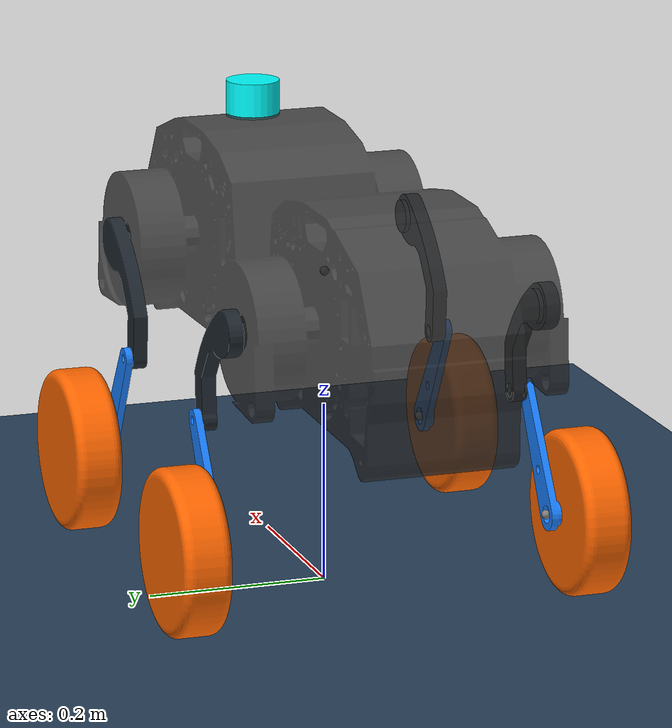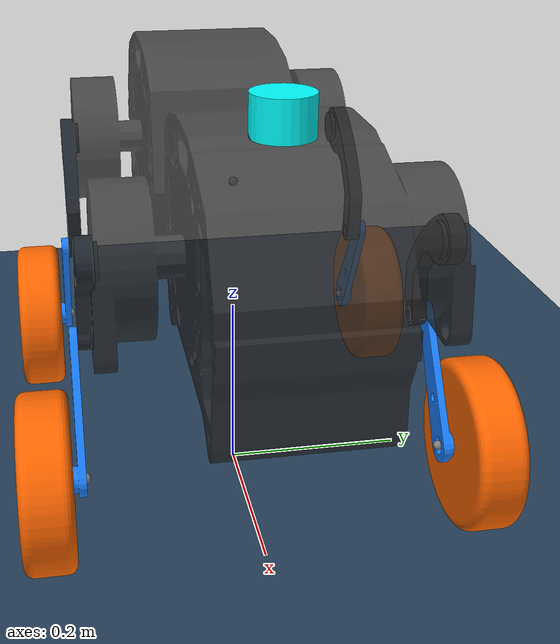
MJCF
<mujoco model="xingtian scene">
  <include file="xingtian_sym_model.xml"/>

  <statistic center="0 0 0.1" extent="0.8"/>

  <visual>
    <headlight diffuse="0.6 0.6 0.6" ambient="0.3 0.3 0.3" specular="0 0 0"/>
    <rgba haze="0.15 0.25 0.35 1"/>
    <global azimuth="-130" elevation="-20"/>
  </visual>

  <asset>
    <texture type="skybox" builtin="gradient" rgb1="0.3 0.5 0.7" rgb2="0 0 0" width="512" height="3072"/>
    <texture type="2d" name="groundplane" builtin="checker" mark="edge" rgb1="0.2 0.3 0.4" rgb2="0.1 0.2 0.3"
      markrgb="0.8 0.8 0.8" width="300" height="300"/>
    <material name="groundplane" texture="groundplane" texuniform="true" texrepeat="5 5" reflectance="0.2"/>
  </asset>

  <worldbody>
    <light pos="0 0 1.5" dir="0 0 -1" directional="true"/>
    <geom name="floor" size="0 0 0.05" type="plane" material="groundplane"/>

  </worldbody>
</mujoco>

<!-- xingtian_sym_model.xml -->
<mujoco model="xingtian_sym_model">
  <compiler angle="radian" meshdir="../meshes/" autolimits="true"/>
  <option cone="elliptic" impratio="100" />           <!-- 摩擦方向，椭圆型摩擦力 -->

  <default>
    <default class="xingtian_sym_model">
      <geom type="mesh" />
      <joint damping="0.5" armature="0.01" />                       <!--group  0 默认可见  1  隐藏  2视觉 3 碰撞 4传感器的锚点-->
      <default class="visual">
        <geom contype="0" conaffinity="0" group="2" />
      </default>
      <default class="collision">
        <geom group="3" mass="0" density="0" />
      </default>
      <site size="0.001" rgba="0.5 0.5 0.5 0.3" group="4" />
    </default>
  </default>

  <asset>
    <material name="metal" rgba=".9 .95 .95 1" />
    <material name="black" rgba="0 0 0 1" />
    <material name="white" rgba="1 1 1 1" />
    <material name="gray" rgba="0.671705 0.692426 0.774270 1" />
    <mesh name="base_link" file="base_link.STL"/>
    <mesh name="imu_link" file="imu_link.STL"/>
    <mesh name="LF_hip" file="LF_hip.STL"/>
    <mesh name="LF_knee" file="LF_knee.STL"/>
    <mesh name="LF_wheel" file="LF_wheel.STL"/>
    <mesh name="LR_hip" file="LR_hip.STL"/>
    <mesh name="LR_knee" file="LR_knee.STL"/>
    <mesh name="LR_wheel" file="LR_wheel.STL"/>
    <mesh name="RR_hip" file="RR_hip.STL"/>
    <mesh name="RR_knee" file="RR_knee.STL"/>
    <mesh name="RR_wheel" file="RR_wheel.STL"/>
    <mesh name="RF_hip" file="RF_hip.STL"/>
    <mesh name="RF_knee" file="RF_knee.STL"/>
    <mesh name="RF_wheel" file="RF_wheel.STL"/>
  </asset>

<!-- contype是指的 是否碰撞 -->
  <worldbody>
    <body name="base_link" pos="0 0 0.35">   <!--初始位置-->
      <inertial pos="-3.2632E-06 2.8538E-07 -0.00055079" quat="1 0 0 0" mass="26.135" diaginertia="0.13317 0.96411 0.91536"/>
      <joint name="float_joint" type ="free"/>
      <geom pos="0 0 0" type="mesh" contype="0" conaffinity="0" group="1" density="0" rgba="0.2 0.2 0.2 0.8" mesh="base_link"/>
      <geom size="0.4 0.08 0.12" type="box" rgba="0 1 1 1" class="collision" />

      <geom pos="0.25 0 0.14" quat="1 0 0 0" type="cylinder" rgba="0 1 1 1" size = "0.03 0.02" contype="0" conaffinity="0" group="1" density="0"/>
      <geom pos="0 0 0.0350984" quat="1 0 0 0" type="mesh" rgba="0.8 0.8 1 0.7" mesh="imu_link" contype="0" conaffinity="0" group="1" density="0"/>
      <site name="imu" pos="0 0 0" />
      <!--髋关节与水平方向夹角2.18  膝关节夹角1.14   -->
      <body name="LF_hip" pos="0.20857 0.1825 -0.00081409">
        <inertial pos="-0.038059 -0.0086135 -0.030705" quat="0.664898 0.263331 0.260727 0.648529" mass="0.25238" diaginertia="0.00068835 0.000638561 6.28183e-05"/>
        <joint name="LF_hip_joint" pos="0 0 0" axis="0 1 0" range="-3.14 3.14" actuatorfrcrange="-50 50" />
        <geom type="mesh" rgba="0.12 0.15 0.18 1" mesh="LF_hip" contype="0" conaffinity="0" group="1" density="0" />

        <body name="LF_knee" pos="-0.0806 -0.016 -0.11447">
          <inertial pos="0.04128 0.020491 -0.068957" quat="0.68025 -0.183788 -0.193017 0.682807" mass="0.10231" diaginertia="0.000229761 0.000222624 8.70614e-06"/>
          <joint name="LF_knee_joint" pos="0 0 0" axis="0 1 0" range="-3.14 3.14" actuatorfrcrange="-50 50" />
          <geom type="mesh" rgba="0.1 0.5 1 0.9"  mesh="LF_knee" contype="1" conaffinity="0" group="1" density="0" />

          <body name="LF_wheel" pos="0.071909 0.016 -0.12012">
            <inertial pos="0 0.039 0" quat="0.707107 0 0 0.707107" mass="3.5088" diaginertia="0.013977 0.0077572 0.0077572"/>
            <joint name="LF_wheel_joint" pos="0 0 0" axis="0 1 0"/>
            <geom type="mesh" rgba="1 0.4 0 1" mesh="LF_wheel" contype="1" conaffinity="1" group="1" density="0" friction="0.5 0.1 0.1" />
            <site name="LF_wheel" pos="0 0 0" />
          </body>
        </body>
      </body>

      <body name="LR_hip" pos="-0.20857 0.1825 -0.00081409">
        <inertial pos="0.038059 -0.0086135 -0.030705" quat="0.648529 -0.260727 -0.263331 0.664898" mass="0.25238" diaginertia="0.00068835 0.000638561 6.28183e-05"/>
        <joint name="LR_hip_joint" pos="0 0 0" axis="0 -1 0" range="-3.14 3.14" actuatorfrcrange="-50 50" />
        <geom type="mesh" rgba="0.12 0.15 0.18 1" mesh="LR_hip" contype="1" conaffinity="0" group="1" density="0" />

        <body name="LR_knee" pos="0.0806 -0.016 -0.11447">
          <inertial pos="-0.04128 0.020491 -0.068957" quat="0.682807 0.193017 0.183788 0.68025" mass="0.10231" diaginertia="0.000229761 0.000222624 8.70614e-06"/>
          <joint name="LR_knee_joint" pos="0 0 0" axis="0 -1 0" range="-3.14 3.14" actuatorfrcrange="-50 50" ref = "0"/>
          <geom type="mesh" rgba="0.1 0.5 1 0.9"  mesh="LR_knee" contype="1" conaffinity="0" group="1" density="0"  />

          <body name="LR_wheel" pos="-0.071909 0.016 -0.12012">
            <inertial pos="0 0.039 0" quat="0.707107 0 0 0.707107" mass="3.5088" diaginertia="0.013977 0.0077572 0.0077572"/>
            <joint name="LR_wheel_joint" pos="0 0 0" axis="0 -1 0"/>
            <geom type="mesh" rgba="1 0.4 0 1" mesh="LR_wheel" contype="1" conaffinity="1" group="1" density="0" friction="0.5 0.1 0.1"/>
            <site name="LR_wheel" pos="0 0 0" />
          </body>
        </body>
      </body>
      <body name="RR_hip" pos="-0.20857 -0.1825 -0.00081409">
        <inertial pos="0.038059 0.0086135 -0.030705" quat="0.664898 -0.263331 -0.260727 0.648529" mass="0.25238" diaginertia="0.00068835 0.000638561 6.28183e-05"/>
        <joint name="RR_hip_joint" pos="0 0 0" axis="0 -1 0" range="-3.14 3.14" actuatorfrcrange="-50 50" />
        <geom type="mesh" rgba="0.12 0.15 0.18 1" mesh="RR_hip" contype="1" conaffinity="0" group="1" density="0" />
        <body name="RR_knee" pos="0.0806 0.016 -0.11447">
          <inertial pos="-0.04128 -0.020491 -0.068957" quat="0.68025 0.183788 0.193017 0.682807" mass="0.10231" diaginertia="0.000229761 0.000222624 8.70614e-06"/>
          <joint name="RR_knee_joint" pos="0 0 0" axis="0 -1 0" range="-3.14 3.14" actuatorfrcrange="-50 50" ref = "0"/>
          <geom type="mesh" rgba="0.1 0.5 1 0.9"  mesh="RR_knee" contype="1" conaffinity="0" group="1" density="0" />
          <body name="RR_wheel" pos="-0.071909 -0.016 -0.12012">
            <inertial pos="0 -0.039 0" quat="0.707107 0 0 0.707107" mass="3.5088" diaginertia="0.013977 0.0077572 0.0077572"/>
            <joint name="RR_wheel_joint" pos="0 0 0" axis="0 -1 0"/>
            <geom type="mesh" rgba="1 0.4 0 1" mesh="RR_wheel" contype="1" conaffinity="1" group="1" density="0" friction="0.5 0.1 0.1"/>
            <site name="RR_wheel" pos="0 0 0" />
          </body>
        </body>
      </body>
      <body name="RF_hip" pos="0.20857 -0.1825 -0.00081409">
        <inertial pos="-0.038059 0.0086135 -0.030705" quat="0.648529 0.260727 0.263331 0.664898" mass="0.25238" diaginertia="0.00068835 0.000638561 6.28183e-05"/>
        <joint name="RF_hip_joint" pos="0 0 0" axis="0 1 0" range="-3.14 3.14" actuatorfrcrange="-50 50" />
        <geom type="mesh" rgba="0.12 0.15 0.18 1" mesh="RF_hip" contype="1" conaffinity="0" group="1" density="0" />
        <body name="RF_knee" pos="-0.0806 0.016 -0.11447">
          <inertial pos="0.04128 -0.020491 -0.068957" quat="0.682807 -0.193017 -0.183788 0.68025" mass="0.10231" diaginertia="0.000229761 0.000222624 8.70614e-06"/>
          <joint name="RF_knee_joint" pos="0 0 0" axis="0 1 0" range="-3.14 3.14" actuatorfrcrange="-50 50" ref = "0"/>
          <geom type="mesh" rgba="0.1 0.5 1 0.9"  mesh="RF_knee" contype="1" conaffinity="0" group="1" density="0" />
          <body name="RF_wheel" pos="0.071909 -0.016 -0.12012">
            <inertial pos="0 -0.039 0" quat="0.707107 0 0 0.707107" mass="3.5088" diaginertia="0.013977 0.0077572 0.0077572"/>
            <joint name="RF_wheel_joint" pos="0 0 0" axis="0 1 0"/>
            <geom type="mesh" rgba="1 0.4 0 1" mesh="RF_wheel" contype="1" conaffinity="1" group="1" density="0" friction="0.5 0.1 0.1"/>
            <site name="RF_wheel" pos="0 0 0" />
          </body>
        </body>
      </body>
    </body>
  </worldbody>

  <actuator>

    <motor class="xingtian_sym_model" ctrlrange="-50 50" name="LF_hip" joint="LF_hip_joint" />        <!--定义控制信号的输入范围-->
    <motor class="xingtian_sym_model" ctrlrange="-50 50" name="LF_knee" joint="LF_knee_joint" />
    <motor class="xingtian_sym_model" ctrlrange="-50 50" name="LR_hip" joint="LR_hip_joint" />
    <motor class="xingtian_sym_model" ctrlrange="-50 50" name="LR_knee" joint="LR_knee_joint" />
    <motor class="xingtian_sym_model" ctrlrange="-50 50" name="RR_hip" joint="RR_hip_joint" />
    <motor class="xingtian_sym_model" ctrlrange="-50 50" name="RR_knee" joint="RR_knee_joint" />
    <motor class="xingtian_sym_model" ctrlrange="-50 50" name="RF_hip" joint="RF_hip_joint" />
    <motor class="xingtian_sym_model" ctrlrange="-50 50" name="RF_knee" joint="RF_knee_joint" />

    <motor class="xingtian_sym_model" ctrlrange="-20 20" name="LF_wheel" joint="LF_wheel_joint" />
    <motor class="xingtian_sym_model" ctrlrange="-20 20" name="LR_wheel" joint="LR_wheel_joint" />
    <motor class="xingtian_sym_model" ctrlrange="-20 20" name="RR_wheel" joint="RR_wheel_joint" />
    <motor class="xingtian_sym_model" ctrlrange="-20 20" name="RF_wheel" joint="RF_wheel_joint" />
  </actuator>
  <!-- 按顺序输出传感器信息 -->
  <sensor>
    <jointpos name="LF_hip_pos" joint="LF_hip_joint" />
    <jointpos name="LF_knee_pos" joint="LF_knee_joint" />

    <jointpos name="LR_hip_pos" joint="LR_hip_joint" />
    <jointpos name="LR_knee_pos" joint="LR_knee_joint" />

    <jointpos name="RR_hip_pos" joint="RR_hip_joint" />
    <jointpos name="RR_knee_pos" joint="RR_knee_joint" />

    <jointpos name="RF_hip_pos" joint="RF_hip_joint" />
    <jointpos name="RF_knee_pos" joint="RF_knee_joint" />

    <jointpos name="LF_wheel_pos" joint="LF_wheel_joint" />
    <jointpos name="LR_wheel_pos" joint="LR_wheel_joint" />
    <jointpos name="RR_wheel_pos" joint="RR_wheel_joint" />
    <jointpos name="RF_wheel_pos" joint="RF_wheel_joint" />

    <jointvel name="LF_hip_vel" joint="LF_hip_joint" />
    <jointvel name="LF_knee_vel" joint="LF_knee_joint" />

    <jointvel name="LR_hip_vel" joint="LR_hip_joint" />
    <jointvel name="LR_knee_vel" joint="LR_knee_joint" />

    <jointvel name="RR_hip_vel" joint="RR_hip_joint" />
    <jointvel name="RR_knee_vel" joint="RR_knee_joint" />

    <jointvel name="RF_hip_vel" joint="RF_hip_joint" />
    <jointvel name="RF_knee_vel" joint="RF_knee_joint" />

    <jointvel name="LF_wheel_vel" joint="LF_wheel_joint" />
    <jointvel name="LR_wheel_vel" joint="LR_wheel_joint" />
    <jointvel name="RR_wheel_vel" joint="RR_wheel_joint" />
    <jointvel name="RF_wheel_vel" joint="RF_wheel_joint" />

    <jointactuatorfrc name="LF_hip_torque" joint="LF_hip_joint" noise = "0.001" />
    <jointactuatorfrc name="LF_knee_torque" joint="LF_knee_joint" noise = "0.001" />

    <jointactuatorfrc name="LR_hip_torque" joint="LR_hip_joint" noise = "0.001" />
    <jointactuatorfrc name="LR_knee_torque" joint="LR_knee_joint" noise = "0.001" />

    <jointactuatorfrc name="RR_hip_torque" joint="RR_hip_joint" noise = "0.001" />
    <jointactuatorfrc name="RR_knee_torque" joint="RR_knee_joint" noise = "0.001" />

    <jointactuatorfrc name="RF_hip_torque" joint="RF_hip_joint" noise = "0.001" />
    <jointactuatorfrc name="RF_knee_torque" joint="RF_knee_joint" noise = "0.001" />

    <jointactuatorfrc name="LF_wheel_torque" joint="LF_wheel_joint" />
    <jointactuatorfrc name="LR_wheel_torque" joint="LR_wheel_joint" />
    <jointactuatorfrc name="RR_wheel_torque" joint="RR_wheel_joint" />
    <jointactuatorfrc name="RF_wheel_torque" joint="RF_wheel_joint" />

    <force name="LF_wheel_force" site="LF_wheel" />
    <force name="LR_wheel_force" site="LR_wheel" />
    <force name="RR_wheel_force" site="RR_wheel" />
    <force name="RF_wheel_force" site="RF_wheel" />

    <framequat name="imu_quat" objtype="site" objname="imu" />·
    <gyro name="imu_gyro" site="imu" />
    <accelerometer name="imu_acc" site="imu" />

    <framepos name="frame_pos" objtype="site" objname="imu" />
    <framelinvel name="frame_vel" objtype="site" objname="imu" />
  </sensor>

</mujoco>
